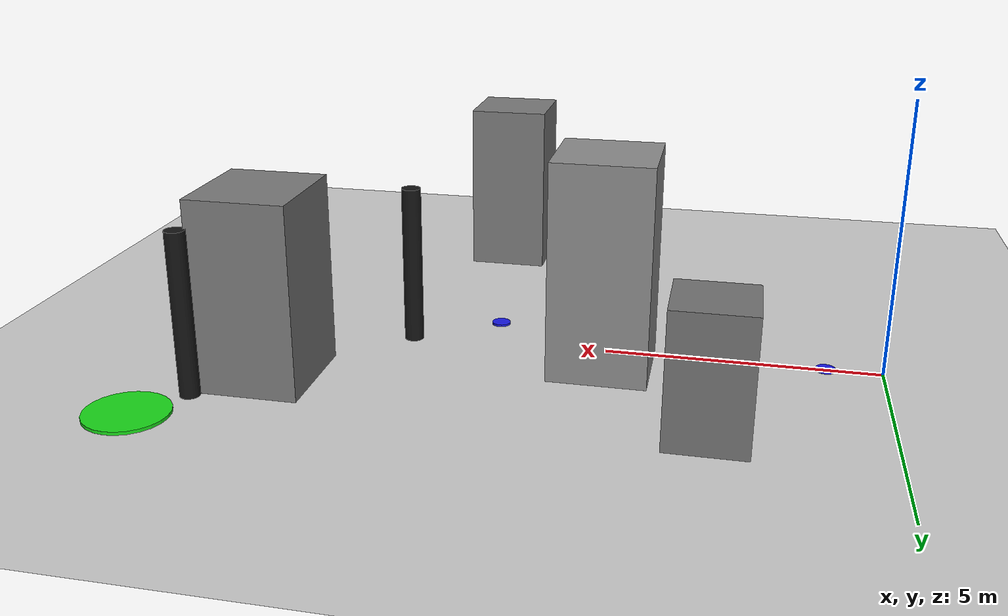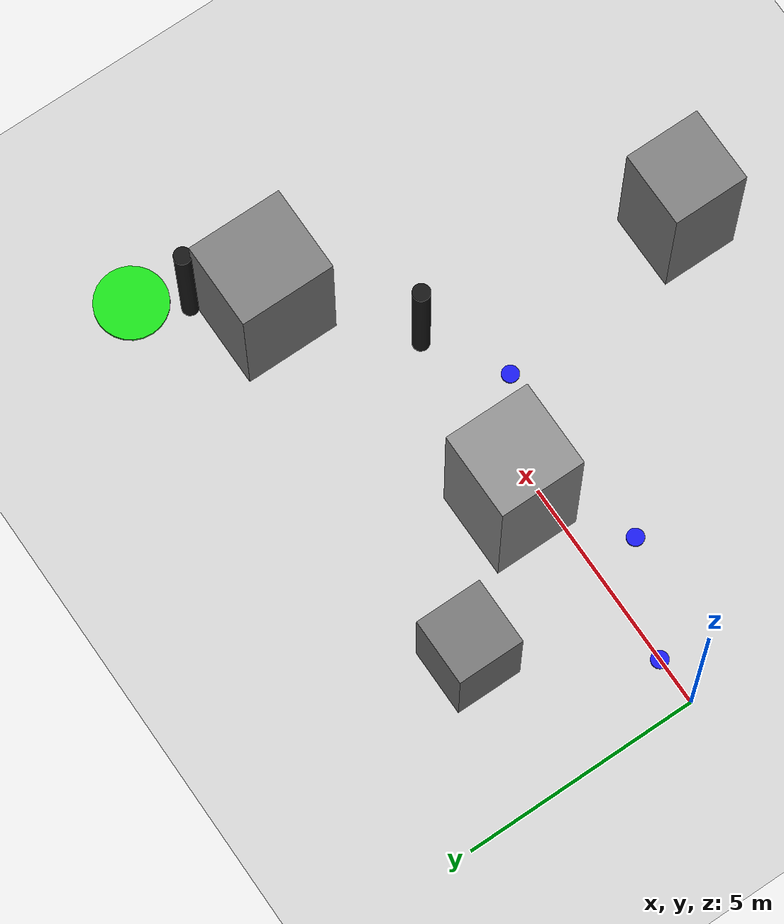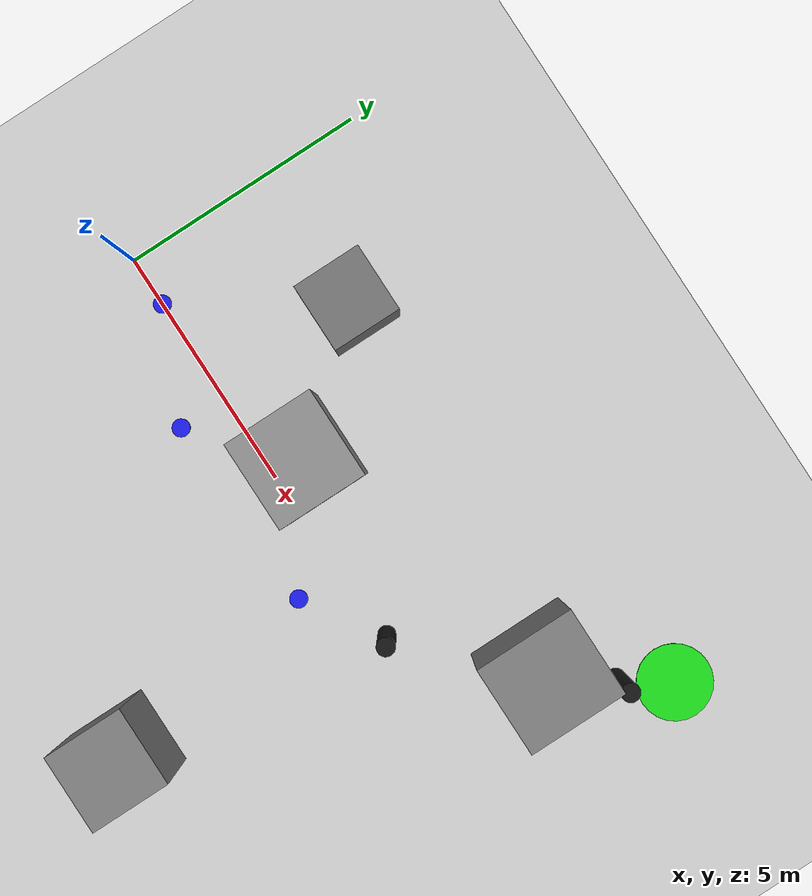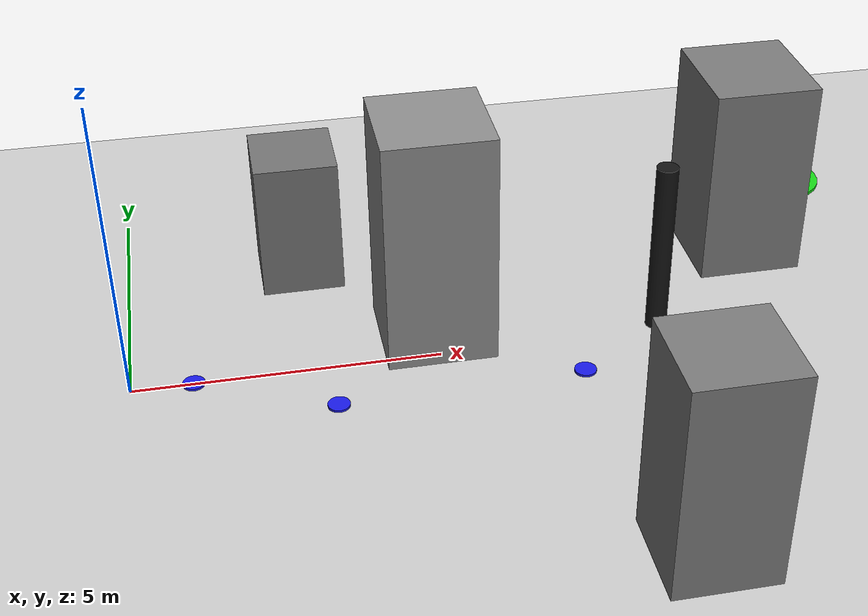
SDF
<?xml version="1.0" ?>
<sdf version="1.6">
  <world name="default">

    <include>
      <uri>model://sun</uri>
    </include>

    <include>
      <uri>model://ground_plane</uri>
    </include>

    <gui fullscreen="0">
      <camera name="user_camera">
        <!-- Fixed overview camera for D2 open-block delivery scene. -->
        <pose>7 -14 12 0 0.75 1.5708</pose>
        <view_controller>orbit</view_controller>
        <projection_type>perspective</projection_type>
      </camera>
    </gui>

    <physics name="default_physics" default="0" type="ode">
      <gravity>0 0 -9.8066</gravity>
      <ode>
        <solver>
          <type>quick</type>
          <iters>10</iters>
          <sor>1.3</sor>
        </solver>
        <constraints>
          <cfm>0</cfm>
          <erp>0.2</erp>
          <contact_max_correcting_vel>100</contact_max_correcting_vel>
          <contact_surface_layer>0.001</contact_surface_layer>
        </constraints>
      </ode>
      <real_time_update_rate>250</real_time_update_rate>
      <max_step_size>0.004</max_step_size>
    </physics>

    <!-- Open-block obstacle layout:
         This is not a tunnel. Buildings are separated blocks that force a turn-around route. -->

    <model name="d2_building_main">
      <static>true</static>
      <pose>5 0.65 2.0 0 0 0</pose>
      <link name="link">
        <collision name="collision">
          <geometry>
            <box><size>1.8 1.8 4.0</size></box>
          </geometry>
        </collision>
        <visual name="visual">
          <geometry>
            <box><size>1.8 1.8 4.0</size></box>
          </geometry>
          <material>
            <ambient>0.45 0.45 0.45 1</ambient>
            <diffuse>0.55 0.55 0.55 1</diffuse>
          </material>
        </visual>
      </link>
    </model>

    <model name="d2_building_lower">
      <static>true</static>
      <pose>7.8 -5.2 1.75 0 0 0</pose>
      <link name="link">
        <collision name="collision">
          <geometry>
            <box><size>1.6 1.6 3.5</size></box>
          </geometry>
        </collision>
        <visual name="visual">
          <geometry>
            <box><size>1.6 1.6 3.5</size></box>
          </geometry>
          <material>
            <ambient>0.38 0.38 0.38 1</ambient>
            <diffuse>0.48 0.48 0.48 1</diffuse>
          </material>
        </visual>
      </link>
    </model>

    <model name="d2_building_goal_side">
      <static>true</static>
      <pose>10.8 2.3 1.75 0 0 0</pose>
      <link name="link">
        <collision name="collision">
          <geometry>
            <box><size>1.8 2.0 3.5</size></box>
          </geometry>
        </collision>
        <visual name="visual">
          <geometry>
            <box><size>1.8 2.0 3.5</size></box>
          </geometry>
          <material>
            <ambient>0.38 0.38 0.38 1</ambient>
            <diffuse>0.48 0.48 0.48 1</diffuse>
          </material>
        </visual>
      </link>
    </model>

    <model name="d2_small_block">
      <static>true</static>
      <pose>3.0 3.0 1.2 0 0 0</pose>
      <link name="link">
        <collision name="collision">
          <geometry>
            <box><size>1.4 1.4 2.4</size></box>
          </geometry>
        </collision>
        <visual name="visual">
          <geometry>
            <box><size>1.4 1.4 2.4</size></box>
          </geometry>
          <material>
            <ambient>0.35 0.35 0.35 1</ambient>
            <diffuse>0.45 0.45 0.45 1</diffuse>
          </material>
        </visual>
      </link>
    </model>

    <model name="d2_pole_1">
      <static>true</static>
      <pose>8.7 0.15 1.5 0 0 0</pose>
      <link name="link">
        <collision name="collision">
          <geometry>
            <cylinder>
              <radius>0.18</radius>
              <length>3.0</length>
            </cylinder>
          </geometry>
        </collision>
        <visual name="visual">
          <geometry>
            <cylinder>
              <radius>0.18</radius>
              <length>3.0</length>
            </cylinder>
          </geometry>
          <material>
            <ambient>0.02 0.02 0.02 1</ambient>
            <diffuse>0.08 0.08 0.08 1</diffuse>
          </material>
        </visual>
      </link>
    </model>

    <model name="d2_pole_2">
      <static>true</static>
      <pose>11.8 3.4 1.5 0 0 0</pose>
      <link name="link">
        <collision name="collision">
          <geometry>
            <cylinder>
              <radius>0.18</radius>
              <length>3.0</length>
            </cylinder>
          </geometry>
        </collision>
        <visual name="visual">
          <geometry>
            <cylinder>
              <radius>0.18</radius>
              <length>3.0</length>
            </cylinder>
          </geometry>
          <material>
            <ambient>0.02 0.02 0.02 1</ambient>
            <diffuse>0.08 0.08 0.08 1</diffuse>
          </material>
        </visual>
      </link>
    </model>

    <model name="d2_delivery_pad">
      <static>true</static>
      <pose>12.5 4.3 0.03 0 0 0</pose>
      <link name="link">
        <collision name="collision">
          <geometry>
            <cylinder>
              <radius>0.75</radius>
              <length>0.06</length>
            </cylinder>
          </geometry>
        </collision>
        <visual name="visual">
          <geometry>
            <cylinder>
              <radius>0.75</radius>
              <length>0.06</length>
            </cylinder>
          </geometry>
          <material>
            <ambient>0.1 0.7 0.1 1</ambient>
            <diffuse>0.1 0.85 0.1 1</diffuse>
          </material>
        </visual>
      </link>
    </model>

    <!-- Blue waypoint markers for visual debugging. -->
    <model name="d2_wp_start">
      <static>true</static>
      <pose>1 0 0.02 0 0 0</pose>
      <link name="link">
        <visual name="visual">
          <geometry><cylinder><radius>0.18</radius><length>0.04</length></cylinder></geometry>
          <material><ambient>0.1 0.1 0.8 1</ambient><diffuse>0.1 0.1 0.9 1</diffuse></material>
        </visual>
      </link>
    </model>

    <model name="d2_wp_approach">
      <static>true</static>
      <pose>3.2 -1.0 0.02 0 0 0</pose>
      <link name="link">
        <visual name="visual">
          <geometry><cylinder><radius>0.18</radius><length>0.04</length></cylinder></geometry>
          <material><ambient>0.1 0.1 0.8 1</ambient><diffuse>0.1 0.1 0.9 1</diffuse></material>
        </visual>
      </link>
    </model>

    <model name="d2_wp_turn">
      <static>true</static>
      <pose>7.2 -0.9 0.02 0 0 0</pose>
      <link name="link">
        <visual name="visual">
          <geometry><cylinder><radius>0.18</radius><length>0.04</length></cylinder></geometry>
          <material><ambient>0.1 0.1 0.8 1</ambient><diffuse>0.1 0.1 0.9 1</diffuse></material>
        </visual>
      </link>
    </model>

    <model name="d2_wp_goal">
      <static>true</static>
      <pose>12.5 4.3 0.02 0 0 0</pose>
      <link name="link">
        <visual name="visual">
          <geometry><cylinder><radius>0.18</radius><length>0.04</length></cylinder></geometry>
          <material><ambient>0.1 0.1 0.8 1</ambient><diffuse>0.1 0.1 0.9 1</diffuse></material>
        </visual>
      </link>
    </model>

  </world>
</sdf>
